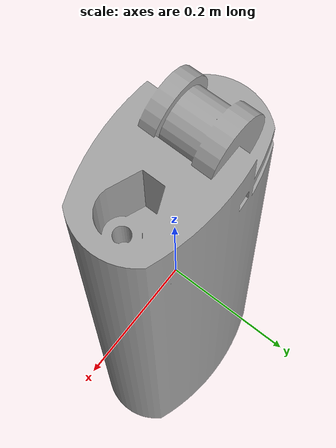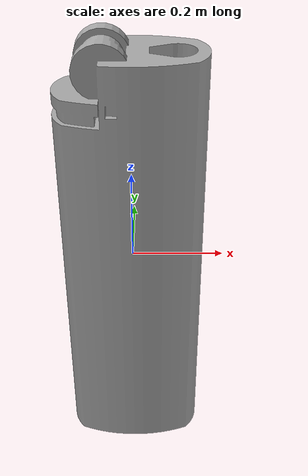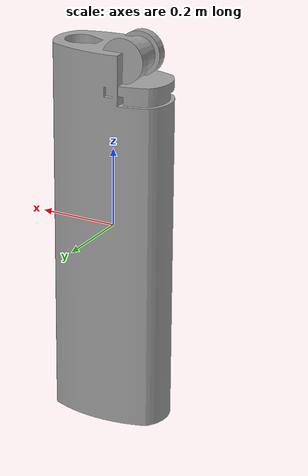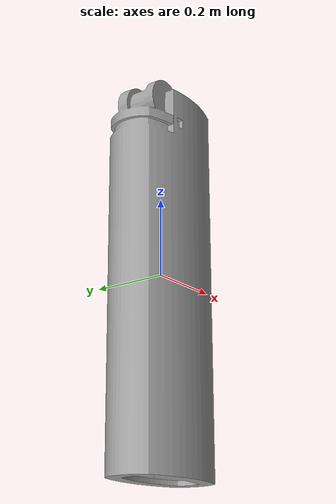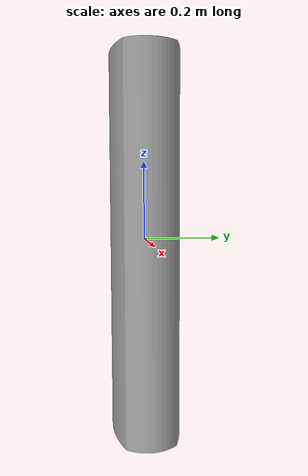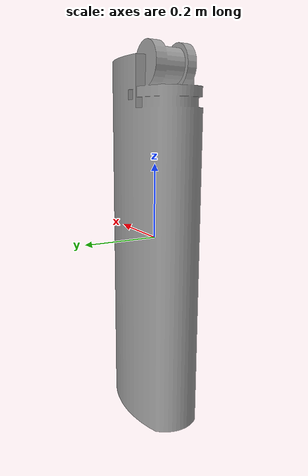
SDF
<?xml version="1.0" ?>
<sdf version="1.5">
  <model name='lighter2'>
    <pose>0 0 0 0 0 0</pose>
    <static>1</static>
    <link name='body'>
      <collision name="lighter2-coll">
        <pose>0 0 -0.5 0 0 0</pose>
        <geometry>
          <mesh>
            <uri>model://lighter2/meshes/lighter2.dae</uri>
          </mesh>
        </geometry>
      </collision>
      <visual name='lighter2'>
        <cast_shadows>1</cast_shadows>
        <pose>0 0 -0.5 0 0 0</pose>
        <geometry>
          <mesh>
            <uri>model://lighter2/meshes/lighter2.dae</uri>
          </mesh>
        </geometry>
      </visual>
      <velocity_decay>
        <linear>0</linear>
        <angular>0</angular>
      </velocity_decay>
      <self_collide>0</self_collide>
      <kinematic>0</kinematic>
      <gravity>1</gravity>
    </link>
  </model>

</sdf>
